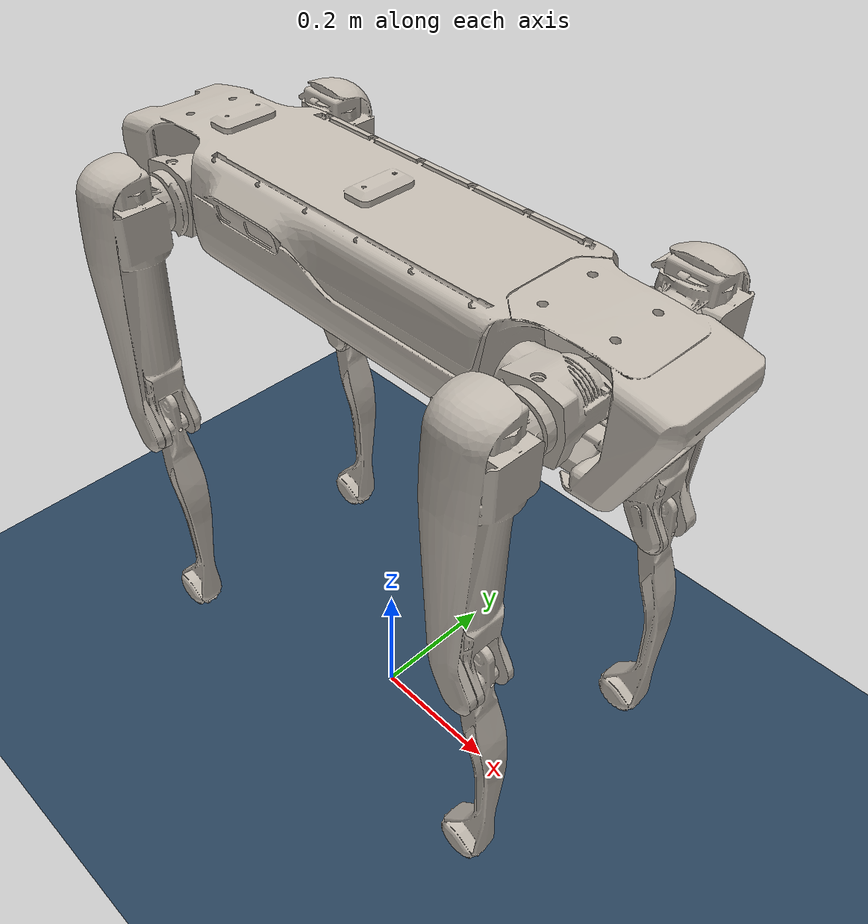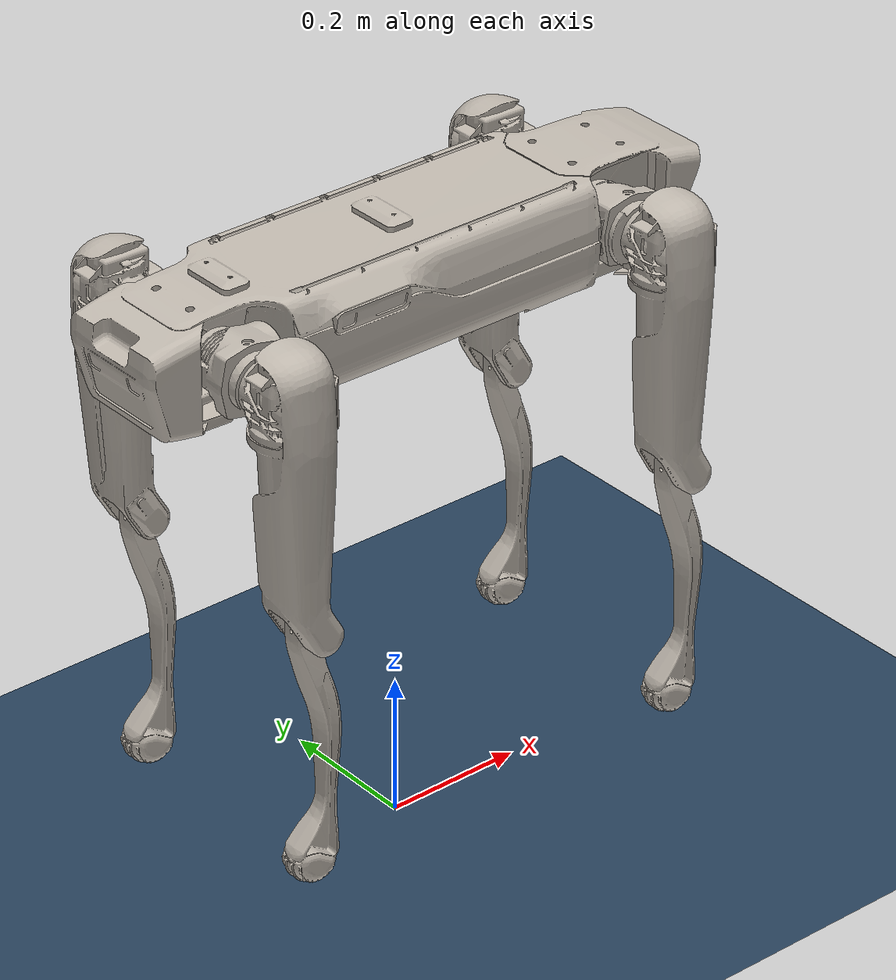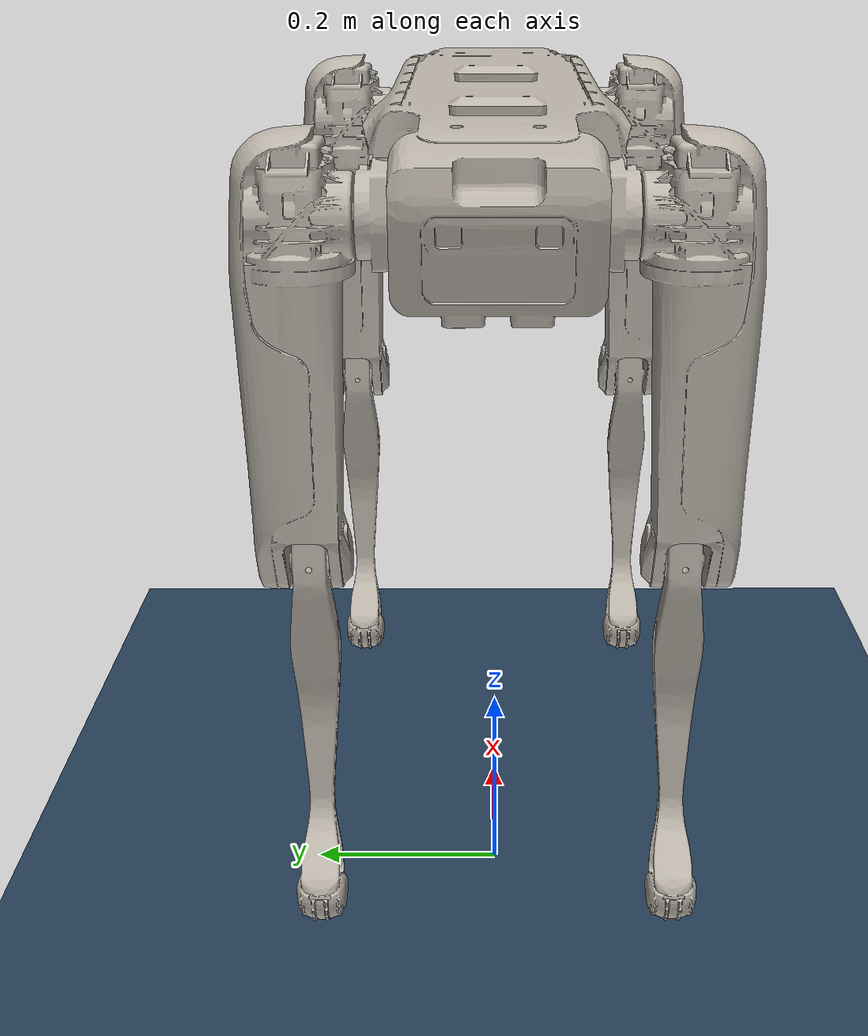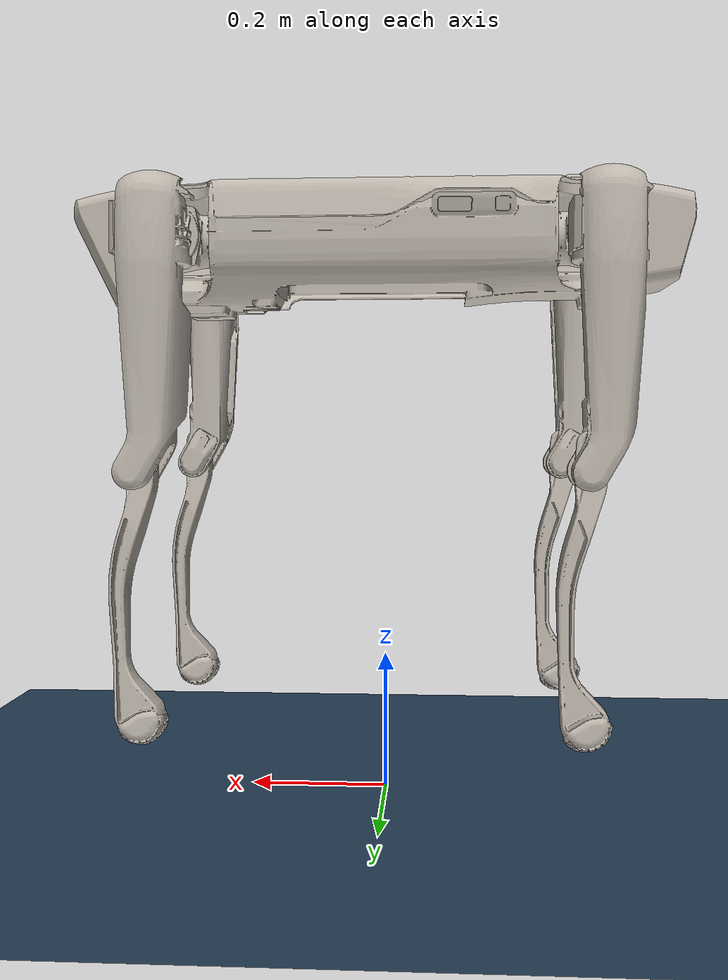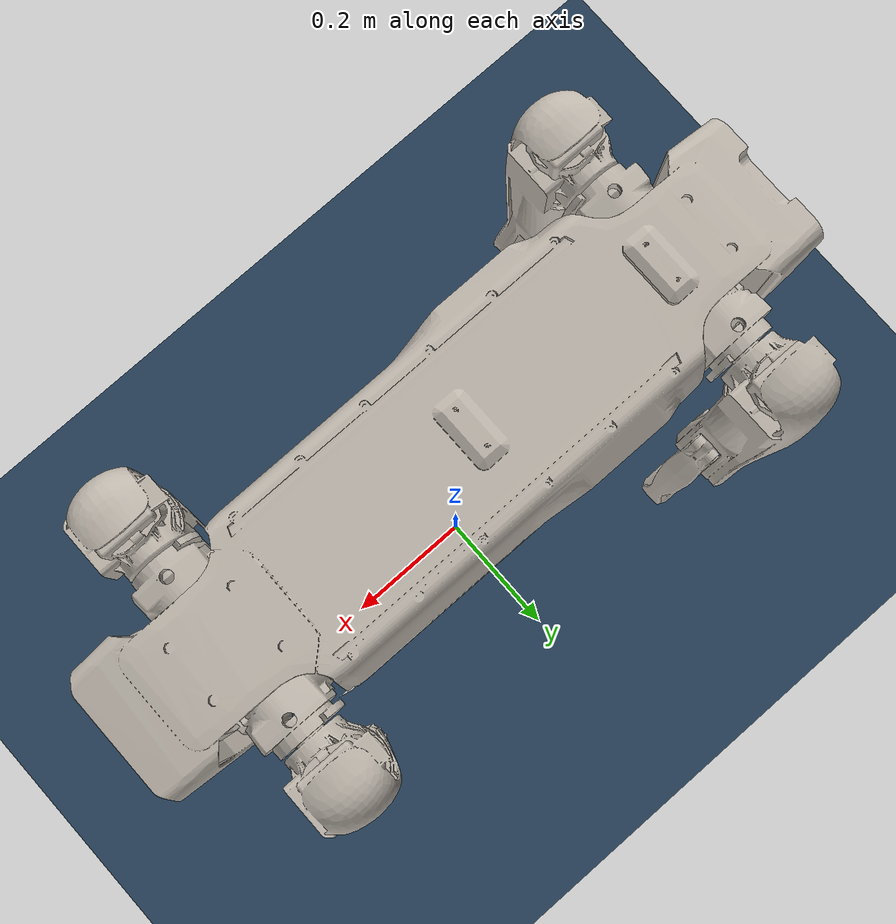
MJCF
<mujoco model="spot scene">
  <include file="spot.xml"/>

  <visual>
    <headlight diffuse="0.6 0.6 0.6" ambient="0.3 0.3 0.3" specular="0 0 0"/>
    <rgba haze="0.15 0.25 0.35 1"/>
    <global azimuth="120" elevation="-20"/>
  </visual>

  <statistic center="0 0 .3" extent="1.05"/>

  <asset>
    <texture type="skybox" builtin="gradient" rgb1="0.3 0.5 0.7" rgb2="0 0 0" width="512" height="3072"/>
    <texture type="2d" name="groundplane" builtin="checker" mark="edge" rgb1="0.2 0.3 0.4" rgb2="0.1 0.2 0.3"
      markrgb="0.8 0.8 0.8" width="300" height="300"/>
    <material name="groundplane" texture="groundplane" texuniform="true" texrepeat="5 5" reflectance="0.2"/>
  </asset>

  <worldbody>
    <light pos="0 0 1.5" dir="0 0 -1.05" directional="true"/>
    <geom name="floor" size="0 0 0.05" type="plane" material="groundplane"/>
  </worldbody>

  <keyframe>
    <key name="home"
      qpos="0 0 0.54
            1 1 0 0
            0 -1.05 1.5
            0 -1.05 1.5
            0 -1.05 1.5
            0 -1.05 1.5"
      ctrl="0.0 -1.05 1.5
            0.0 -1.05 1.5
            0.0 -1.05 1.5
            0.0 -1.05 1.5"/>
  </keyframe>
</mujoco>

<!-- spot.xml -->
<mujoco model="spot">
    <compiler angle="radian" autolimits="true" texturedir="assets" meshdir="assets" balanceinertia="true"/>
    <option cone="elliptic" impratio="100"/>

    <default>
        <material specular="0" shininess="0.25"/>
        <default class="spot">
        <joint damping="1" frictionloss="0.1"/>

        <default class="visual">
            <geom type="mesh" contype="0" conaffinity="0" group="2"/>
            <default class="visual_zflip">
            <geom quat="0 0 0 1"/>
            </default>
        </default>
        <default class="collision">
            <geom group="3" type="cylinder"/>
            <default class="foot">
            <geom type="sphere" size="0.03" pos="0 0 0.02325" priority="1" solimp="0.015 1 0.031" condim="6"
                friction="0.8 0.02 0.01"/>
            </default>
        </default>

        <default class="affine">
            <position kp="100" ctrlrange="-6.28 6.28" forcerange="-80 80"/>
        </default>
        </default>
    </default>

    <asset>
        <material name="base" texture="base"/>

        <texture type="2d" name="base" file="spot_mat.png"/>

        <mesh file="body.obj"/>

        <mesh file="front_left_hip.obj"/>
        <mesh file="front_right_hip.obj"/>
        <mesh file="rear_left_hip.obj"/>
        <mesh file="rear_right_hip.obj"/>

        <mesh file="front_left_upper_leg.obj" />
        <mesh file="front_right_upper_leg.obj" />
        <mesh file="rear_left_upper_leg.obj" />
        <mesh file="rear_right_upper_leg.obj" />

        <mesh file="front_left_lower_leg.obj" />
        <mesh file="front_right_lower_leg.obj" />
        <mesh file="rear_left_lower_leg.obj" />
        <mesh file="rear_right_lower_leg.obj" />

        <mesh file="body_collision.stl"/>

        <mesh file="front_left_hip_collision.stl"/>
        <mesh file="front_right_hip_collision.stl"/>
        <mesh file="rear_left_hip_collision.stl"/>
        <mesh file="rear_right_hip_collision.stl"/>

        <mesh file="front_left_upper_leg_collision.stl" />
        <mesh file="front_right_upper_leg_collision.stl" />
        <mesh file="rear_left_upper_leg_collision.stl" />
        <mesh file="rear_right_upper_leg_collision.stl" />

        <mesh file="front_left_lower_leg_collision.stl" />
        <mesh file="front_right_lower_leg_collision.stl" />
        <mesh file="rear_left_lower_leg_collision.stl" />
        <mesh file="rear_right_lower_leg_collision.stl" />
    </asset>

    <worldbody>
        <light name="spotlight" mode="targetbodycom" target="base" pos="0 -1 2" cutoff="30"/>
        <body name="base" pos="0 0 0.8" quat="1 1 0 0" childclass="spot">
            <freejoint/>
            <inertial mass="16.25" pos="0 0 0" diaginertia="0.085 1.045 1.042"/>
            <geom mesh="body" material="base" class="visual"/>
            <geom mesh="body_collision" class="collision"/>

            <body name="FL_hip" pos="0.29785 0 -0.05500">
                <inertial mass="1.5" pos="0 0 0" diaginertia="0.0605 0.0 0.0"/>
                <joint name="front_left_hip_x" type="hinge" pos="0 0 0" axis="1 0 0" range="-1.57 1.57" damping="0.1"/>
                <geom material="base" mesh="front_left_hip" class="visual"/>
                <geom mesh="front_left_hip_collision" class="collision" quat="1 -1 0 0"/>

                <body name="FL_upper_leg" pos="0.0 0.0 -0.110945">
                    <inertial mass="1.5" pos="0 0 0" diaginertia="0.0 0.5 0.0"/>
                    <joint name="front_left_upper_leg_x" type="hinge" pos="0 0 0" axis="0 0 1" range="-3.14 3.14" damping="0.1"/>
                    <geom material="base" mesh="front_left_upper_leg" class="visual"/>
                    <geom mesh="front_left_upper_leg_collision" class="collision" quat="1 -1 0 0"/>

                    <body name="FL_lower_leg" pos="0.025 -0.3205 0">
                        <inertial mass="1.5" pos="0 0 0" diaginertia="0.0 0.045 0.0"/>
                        <joint name="front_left_lower_leg_x" type="hinge" pos="0 0 0" axis="0 0 1" range="-3.14 3.14" damping="0.1"/>
                        <geom material="base" mesh="front_left_lower_leg" class="visual"/>
                        <geom mesh="front_left_lower_leg_collision" class="collision" quat="1 -1 0 0"/>
                    </body>
                </body>
            </body>

            <body name="FR_HIP" pos="0.29785 0 +0.05500">
                <inertial mass="1.5" pos="0 0 0" diaginertia="0.0605 0.0 0.0"/>
                <joint name="front_right_hip_x" type="hinge" pos="0 0 0" axis="1 0 0" range="-1.57 1.57" damping="0.1"/>
                <geom material="base" mesh="front_right_hip" class="visual"/>
                <geom mesh="front_right_hip_collision" class="collision" quat="1 -1 0 0"/>

                <body name="FR_upper_leg" pos="0.0 0.0 +0.110945">
                    <inertial mass="1.5" pos="0 0 0" diaginertia="0.0 0.5 0.0"/>
                    <joint name="front_right_upper_leg_x" type="hinge" pos="0 0 0" axis="0 0 1" range="-3.14 3.14" damping="0.1"/>
                    <geom material="base" mesh="front_right_upper_leg" class="visual"/>
                    <geom mesh="front_right_upper_leg_collision" class="collision" quat="1 -1 0 0"/>

                    <body name="FR_lower_leg" pos="0.025 -0.3205 0">
                        <inertial mass="1.5" pos="0 0 0" diaginertia="0.0 0.045 0.0"/>
                        <joint name="front_right_lower_leg_x" type="hinge" pos="0 0 0" axis="0 0 1" range="-3.14 3.14" damping="0.1"/>
                        <geom material="base" mesh="front_right_lower_leg" class="visual"/>
                        <geom mesh="front_right_lower_leg_collision" class="collision" quat="1 -1 0 0"/>
                    </body>
                </body>
            </body>

            <body name="RL_HIP" pos="-0.29785 0 -0.05500">
                <inertial mass="1.5" pos="0 0 0" diaginertia="0.0605 0.0 0.0"/>
                <joint name="rear_left_hip_x" type="hinge" pos="0 0 0" axis="1 0 0" range="-1.57 1.57" damping="0.1"/>
                <geom material="base" mesh="rear_left_hip" class="visual"/>
                <geom mesh="rear_left_hip_collision" class="collision" quat="1 -1 0 0"/>

                <body name="RL_upper_leg" pos="0.0 0.0 -0.110945">
                    <inertial mass="1.5" pos="0 0 0" diaginertia="0.0 0.5 0.0"/>
                    <joint name="rear_left_upper_leg_x" type="hinge" pos="0 0 0" axis="0 0 1" range="-3.14 3.14" damping="0.1"/>
                    <geom material="base" mesh="rear_left_upper_leg" class="visual"/>
                    <geom mesh="rear_left_upper_leg_collision" class="collision" quat="1 -1 0 0"/>

                    <body name="RL_lower_leg" pos="0.025 -0.3205 0">
                        <inertial mass="1.5" pos="0 0 0" diaginertia="0.0 0.045 0.0"/>
                        <joint name="rear_left_lower_leg_x" type="hinge" pos="0 0 0" axis="0 0 1" range="-3.14 3.14" damping="0.1"/>
                        <geom material="base" mesh="rear_left_lower_leg" class="visual"/>
                        <geom mesh="rear_left_lower_leg_collision" class="collision" quat="1 -1 0 0"/>
                    </body>
                </body>
            </body>

            <body name="RR_HIP" pos="-0.29785 0 +0.05500">
                <inertial mass="1.5" pos="0 0 0" diaginertia="0.0605 0.0 0.0"/>
                <joint name="rear_right_hip_x" type="hinge" pos="0 0 0" axis="1 0 0" range="-1.57 1.57" damping="0.1"/>
                <geom material="base" mesh="rear_right_hip" class="visual"/>
                <geom mesh="rear_right_hip_collision" class="collision" quat="1 -1 0 0"/>

                <body name="RR_upper_leg" pos="0.0 0.0 +0.110945">
                    <inertial mass="1.5" pos="0 0 0" diaginertia="0.0 0.5 0.0"/>
                    <joint name="rear_right_upper_leg_x" type="hinge" pos="0 0 0" axis="0 0 1" range="-3.14 3.14" damping="0.1"/>
                    <geom material="base" mesh="rear_right_upper_leg" class="visual"/>
                    <geom mesh="rear_right_upper_leg_collision" class="collision" quat="1 -1 0 0"/>

                    <body name="RR_lower_leg" pos="0.025 -0.3205 0">
                        <inertial mass="1.5" pos="0 0 0" diaginertia="0.0 0.045 0.0"/>
                        <joint name="rear_right_lower_leg_x" type="hinge" pos="0 0 0" axis="0 0 1" range="-3.14 3.14" damping="0.1"/>
                        <geom material="base" mesh="rear_right_lower_leg" class="visual"/>
                        <geom mesh="rear_right_lower_leg_collision" class="collision" quat="1 -1 0 0"/>
                    </body>
                </body>
            </body>

        </body>
    </worldbody>

  <actuator>
    <position class="affine" joint="front_left_hip_x" name="front_left_hip_x"/>
    <position class="affine" joint="front_left_upper_leg_x" name="front_left_upper_leg_x"/>
    <position class="affine" joint="front_left_lower_leg_x" name="front_left_lower_leg_x"/>

    <position class="affine" joint="front_right_hip_x" name="front_right_hip_x"/>
    <position class="affine" joint="front_right_upper_leg_x" name="front_right_upper_leg_x"/>
    <position class="affine" joint="front_right_lower_leg_x" name="front_right_lower_leg_x"/>

    <position class="affine" joint="rear_left_hip_x" name="rear_left_hip_x"/>
    <position class="affine" joint="rear_left_upper_leg_x" name="rear_left_upper_leg_x"/>
    <position class="affine" joint="rear_left_lower_leg_x" name="rear_left_lower_leg_x"/>

    <position class="affine" joint="rear_right_hip_x" name="rear_right_hip_x"/>
    <position class="affine" joint="rear_right_upper_leg_x" name="rear_right_upper_leg_x"/>
    <position class="affine" joint="rear_right_lower_leg_x" name="rear_right_lower_leg_x"/>
  </actuator>
</mujoco>
